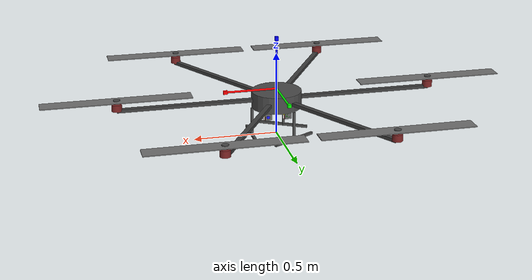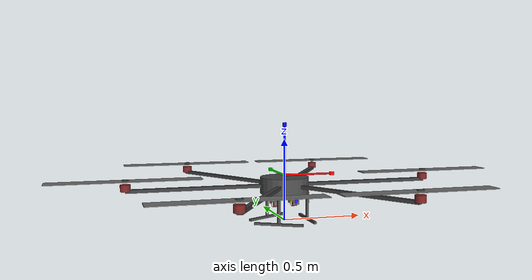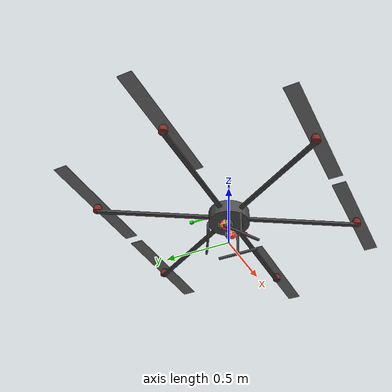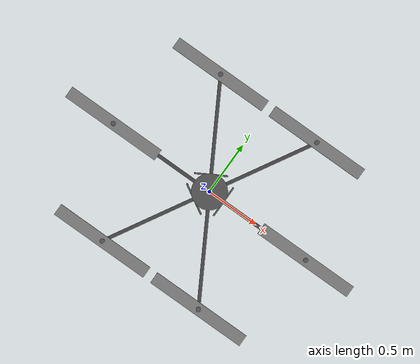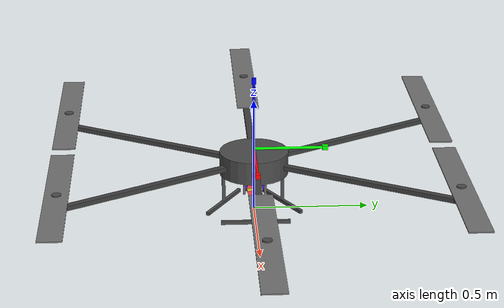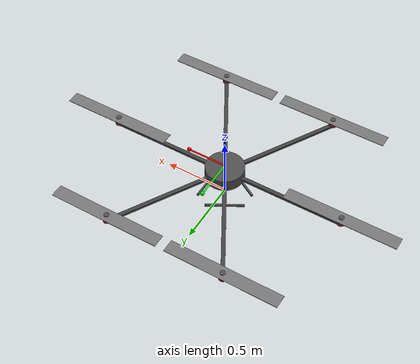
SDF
<?xml version="1.0" encoding="UTF-8"?>
<sdf version='1.9'>
  <model name='mars_hexacopter_cmg500_base'>
    <pose>0 0 0.22 0 0 0</pose>
    <self_collide>false</self_collide>
    <static>false</static>

    <!-- base_link: hub + arms + motors + landing gear -->
    <!-- Mass: 5.0 - 6×0.055(rotor) - 2×0.44(CMG) = 3.790 -->
    <link name="base_link">
      <inertial>
        <mass>3.790</mass>
        <inertia>
          <ixx>0.34310</ixx>
          <ixy>0</ixy>
          <ixz>0</ixz>
          <iyy>0.34310</iyy>
          <iyz>0</iyz>
          <izz>0.68200</izz>
        </inertia>
      </inertial>
      <gravity>true</gravity>
      <velocity_decay/>

      <!-- Central hub (cylinder r=0.15, h=0.10) -->
      <visual name="hub_visual">
        <pose>0 0 0 0 0 0</pose>
        <geometry>
          <cylinder>
            <radius>0.15</radius>
            <length>0.10</length>
          </cylinder>
        </geometry>
        <material>
          <ambient>0.2 0.2 0.2 1</ambient>
          <diffuse>0.3 0.3 0.3 1</diffuse>
        </material>
      </visual>

      <!-- Arm 0: 0° -->
      <visual name="arm_0_visual">
        <pose>0.55 0 0 0 0 0</pose>
        <geometry>
          <box><size>0.80 0.03 0.02</size></box>
        </geometry>
        <material>
          <ambient>0.15 0.15 0.15 1</ambient>
          <diffuse>0.25 0.25 0.25 1</diffuse>
        </material>
      </visual>

      <!-- Arm 1: 60° -->
      <visual name="arm_1_visual">
        <pose>0.275 0.47631 0 0 0 1.0472</pose>
        <geometry>
          <box><size>0.80 0.03 0.02</size></box>
        </geometry>
        <material>
          <ambient>0.15 0.15 0.15 1</ambient>
          <diffuse>0.25 0.25 0.25 1</diffuse>
        </material>
      </visual>

      <!-- Arm 2: 120° -->
      <visual name="arm_2_visual">
        <pose>-0.275 0.47631 0 0 0 2.0944</pose>
        <geometry>
          <box><size>0.80 0.03 0.02</size></box>
        </geometry>
        <material>
          <ambient>0.15 0.15 0.15 1</ambient>
          <diffuse>0.25 0.25 0.25 1</diffuse>
        </material>
      </visual>

      <!-- Arm 3: 180° -->
      <visual name="arm_3_visual">
        <pose>-0.55 0 0 0 0 3.1416</pose>
        <geometry>
          <box><size>0.80 0.03 0.02</size></box>
        </geometry>
        <material>
          <ambient>0.15 0.15 0.15 1</ambient>
          <diffuse>0.25 0.25 0.25 1</diffuse>
        </material>
      </visual>

      <!-- Arm 4: 240° -->
      <visual name="arm_4_visual">
        <pose>-0.275 -0.47631 0 0 0 4.1888</pose>
        <geometry>
          <box><size>0.80 0.03 0.02</size></box>
        </geometry>
        <material>
          <ambient>0.15 0.15 0.15 1</ambient>
          <diffuse>0.25 0.25 0.25 1</diffuse>
        </material>
      </visual>

      <!-- Arm 5: 300° -->
      <visual name="arm_5_visual">
        <pose>0.275 -0.47631 0 0 0 5.2360</pose>
        <geometry>
          <box><size>0.80 0.03 0.02</size></box>
        </geometry>
        <material>
          <ambient>0.15 0.15 0.15 1</ambient>
          <diffuse>0.25 0.25 0.25 1</diffuse>
        </material>
      </visual>

      <!-- Motor pods (small cylinders at arm tips) -->
      <visual name="motor_pod_0">
        <pose>0.95 0 0.02 0 0 0</pose>
        <geometry><cylinder><radius>0.03</radius><length>0.04</length></cylinder></geometry>
        <material><ambient>0.3 0.1 0.1 1</ambient><diffuse>0.5 0.15 0.15 1</diffuse></material>
      </visual>
      <visual name="motor_pod_1">
        <pose>0.475 0.82272 0.02 0 0 0</pose>
        <geometry><cylinder><radius>0.03</radius><length>0.04</length></cylinder></geometry>
        <material><ambient>0.3 0.1 0.1 1</ambient><diffuse>0.5 0.15 0.15 1</diffuse></material>
      </visual>
      <visual name="motor_pod_2">
        <pose>-0.475 0.82272 0.02 0 0 0</pose>
        <geometry><cylinder><radius>0.03</radius><length>0.04</length></cylinder></geometry>
        <material><ambient>0.3 0.1 0.1 1</ambient><diffuse>0.5 0.15 0.15 1</diffuse></material>
      </visual>
      <visual name="motor_pod_3">
        <pose>-0.95 0 0.02 0 0 0</pose>
        <geometry><cylinder><radius>0.03</radius><length>0.04</length></cylinder></geometry>
        <material><ambient>0.3 0.1 0.1 1</ambient><diffuse>0.5 0.15 0.15 1</diffuse></material>
      </visual>
      <visual name="motor_pod_4">
        <pose>-0.475 -0.82272 0.02 0 0 0</pose>
        <geometry><cylinder><radius>0.03</radius><length>0.04</length></cylinder></geometry>
        <material><ambient>0.3 0.1 0.1 1</ambient><diffuse>0.5 0.15 0.15 1</diffuse></material>
      </visual>
      <visual name="motor_pod_5">
        <pose>0.475 -0.82272 0.02 0 0 0</pose>
        <geometry><cylinder><radius>0.03</radius><length>0.04</length></cylinder></geometry>
        <material><ambient>0.3 0.1 0.1 1</ambient><diffuse>0.5 0.15 0.15 1</diffuse></material>
      </visual>

      <!-- Landing gear: 3 legs at 0°, 120°, 240° -->
      <visual name="leg_0_visual">
        <pose>0.15 0 -0.135 0 0 0</pose>
        <geometry><box><size>0.015 0.015 0.17</size></box></geometry>
        <material><ambient>0.2 0.2 0.2 1</ambient><diffuse>0.3 0.3 0.3 1</diffuse></material>
      </visual>
      <visual name="leg_1_visual">
        <pose>-0.075 0.130 -0.135 0 0 0</pose>
        <geometry><box><size>0.015 0.015 0.17</size></box></geometry>
        <material><ambient>0.2 0.2 0.2 1</ambient><diffuse>0.3 0.3 0.3 1</diffuse></material>
      </visual>
      <visual name="leg_2_visual">
        <pose>-0.075 -0.130 -0.135 0 0 0</pose>
        <geometry><box><size>0.015 0.015 0.17</size></box></geometry>
        <material><ambient>0.2 0.2 0.2 1</ambient><diffuse>0.3 0.3 0.3 1</diffuse></material>
      </visual>
      <visual name="foot_0">
        <pose>0.15 0 -0.22 0 0 1.5708</pose>
        <geometry><box><size>0.30 0.015 0.015</size></box></geometry>
        <material><ambient>0.2 0.2 0.2 1</ambient><diffuse>0.3 0.3 0.3 1</diffuse></material>
      </visual>
      <visual name="foot_1">
        <pose>-0.075 0.130 -0.22 0 0 0.5236</pose>
        <geometry><box><size>0.30 0.015 0.015</size></box></geometry>
        <material><ambient>0.2 0.2 0.2 1</ambient><diffuse>0.3 0.3 0.3 1</diffuse></material>
      </visual>
      <visual name="foot_2">
        <pose>-0.075 -0.130 -0.22 0 0 -0.5236</pose>
        <geometry><box><size>0.30 0.015 0.015</size></box></geometry>
        <material><ambient>0.2 0.2 0.2 1</ambient><diffuse>0.3 0.3 0.3 1</diffuse></material>
      </visual>

      <!-- Collision: central hub -->
      <collision name="hub_collision">
        <pose>0 0 0 0 0 0</pose>
        <geometry>
          <cylinder>
            <radius>0.15</radius>
            <length>0.10</length>
          </cylinder>
        </geometry>
        <surface>
          <contact><ode><min_depth>0.001</min_depth><max_vel>0</max_vel></ode></contact>
          <friction><ode/></friction>
        </surface>
      </collision>
      <!-- Collision: landing gear feet -->
      <collision name="foot_0_collision">
        <pose>0.15 0 -0.20 0 0 1.5708</pose>
        <geometry><box><size>0.30 0.04 0.06</size></box></geometry>
        <surface>
          <contact><ode><min_depth>0.002</min_depth><max_vel>0</max_vel></ode></contact>
          <friction><ode><mu>1.0</mu><mu2>1.0</mu2></ode></friction>
        </surface>
      </collision>
      <collision name="foot_1_collision">
        <pose>-0.075 0.130 -0.20 0 0 0.5236</pose>
        <geometry><box><size>0.30 0.04 0.06</size></box></geometry>
        <surface>
          <contact><ode><min_depth>0.002</min_depth><max_vel>0</max_vel></ode></contact>
          <friction><ode><mu>1.0</mu><mu2>1.0</mu2></ode></friction>
        </surface>
      </collision>
      <collision name="foot_2_collision">
        <pose>-0.075 -0.130 -0.20 0 0 -0.5236</pose>
        <geometry><box><size>0.30 0.04 0.06</size></box></geometry>
        <surface>
          <contact><ode><min_depth>0.002</min_depth><max_vel>0</max_vel></ode></contact>
          <friction><ode><mu>1.0</mu><mu2>1.0</mu2></ode></friction>
        </surface>
      </collision>

      <!-- Sensors -->
      <sensor name="imu_sensor" type="imu">
        <gz_frame_id>base_link</gz_frame_id>
        <always_on>1</always_on>
        <update_rate>250</update_rate>
        <imu>
          <angular_velocity>
            <x><noise type="gaussian"><mean>0.0</mean><stddev>0.0008726646</stddev></noise></x>
            <y><noise type="gaussian"><mean>0.0</mean><stddev>0.0008726646</stddev></noise></y>
            <z><noise type="gaussian"><mean>0.0</mean><stddev>0.0008726646</stddev></noise></z>
          </angular_velocity>
          <linear_acceleration>
            <x><noise type="gaussian"><mean>0.0</mean><stddev>0.00637</stddev></noise></x>
            <y><noise type="gaussian"><mean>0.0</mean><stddev>0.00637</stddev></noise></y>
            <z><noise type="gaussian"><mean>0.0</mean><stddev>0.00686</stddev></noise></z>
          </linear_acceleration>
        </imu>
      </sensor>
      <sensor name="air_pressure_sensor" type="air_pressure">
        <gz_frame_id>base_link</gz_frame_id>
        <always_on>1</always_on>
        <update_rate>50</update_rate>
        <air_pressure>
          <pressure><noise type="gaussian"><mean>0</mean><stddev>3</stddev></noise></pressure>
        </air_pressure>
      </sensor>
      <sensor name="navsat_sensor" type="navsat">
        <gz_frame_id>base_link</gz_frame_id>
        <always_on>1</always_on>
        <update_rate>30</update_rate>
      </sensor>

      <!-- ===== Body-frame coordinate axes (RGB = XYZ, no collision) ===== -->
      <!-- All axes at z=0.06 (above hub top surface) to avoid arm overlap -->
      <!-- X axis — Red shaft -->
      <visual name="axis_x_shaft">
        <pose>0.15 0 0.06 0 1.5708 0</pose>
        <geometry><cylinder><radius>0.006</radius><length>0.30</length></cylinder></geometry>
        <material><ambient>0.9 0.0 0.0 1</ambient><diffuse>1.0 0.0 0.0 1</diffuse></material>
      </visual>
      <!-- X axis — Red arrowhead -->
      <visual name="axis_x_tip">
        <pose>0.31 0 0.06 0 0 0</pose>
        <geometry><box><size>0.025 0.02 0.02</size></box></geometry>
        <material><ambient>0.9 0.0 0.0 1</ambient><diffuse>1.0 0.0 0.0 1</diffuse></material>
      </visual>

      <!-- Y axis — Green shaft -->
      <visual name="axis_y_shaft">
        <pose>0 0.15 0.06 1.5708 0 0</pose>
        <geometry><cylinder><radius>0.006</radius><length>0.30</length></cylinder></geometry>
        <material><ambient>0.0 0.9 0.0 1</ambient><diffuse>0.0 1.0 0.0 1</diffuse></material>
      </visual>
      <!-- Y axis — Green arrowhead -->
      <visual name="axis_y_tip">
        <pose>0 0.31 0.06 0 0 0</pose>
        <geometry><box><size>0.02 0.025 0.02</size></box></geometry>
        <material><ambient>0.0 0.9 0.0 1</ambient><diffuse>0.0 1.0 0.0 1</diffuse></material>
      </visual>

      <!-- Z axis — Blue shaft -->
      <visual name="axis_z_shaft">
        <pose>0 0 0.21 0 0 0</pose>
        <geometry><cylinder><radius>0.006</radius><length>0.30</length></cylinder></geometry>
        <material><ambient>0.0 0.0 0.9 1</ambient><diffuse>0.0 0.0 1.0 1</diffuse></material>
      </visual>
      <!-- Z axis — Blue arrowhead -->
      <visual name="axis_z_tip">
        <pose>0 0 0.37 0 0 0</pose>
        <geometry><box><size>0.02 0.02 0.025</size></box></geometry>
        <material><ambient>0.0 0.0 0.9 1</ambient><diffuse>0.0 0.0 1.0 1</diffuse></material>
      </visual>
    </link>

    <!-- Rotor 0: 0° (CCW) -->
    <link name="rotor_0">
      <gravity>true</gravity>
      <self_collide>false</self_collide>
      <velocity_decay/>
      <pose>0.95 0 0.06 0 0 0</pose>
      <inertial>
        <mass>0.055</mass>
        <inertia>
          <ixx>1.0e-05</ixx>
          <iyy>3.549333e-03</iyy>
          <izz>3.549333e-03</izz>
        </inertia>
      </inertial>
      <visual name="rotor_0_blade">
        <geometry>
          <box><size>0.88 0.10 0.005</size></box>
        </geometry>
        <material>
          <ambient>0.3 0.3 0.3 0.9</ambient>
          <diffuse>0.45 0.45 0.45 0.9</diffuse>
        </material>
      </visual>
      <visual name="rotor_0_hub">
        <geometry>
          <cylinder><radius>0.02</radius><length>0.015</length></cylinder>
        </geometry>
        <material>
          <ambient>0.2 0.2 0.2 1</ambient>
          <diffuse>0.3 0.3 0.3 1</diffuse>
        </material>
      </visual>
    </link>
    <joint name="rotor_0_joint" type="revolute">
      <parent>base_link</parent>
      <child>rotor_0</child>
      <axis>
        <xyz>0 0 1</xyz>
        <limit><lower>-1e+16</lower><upper>1e+16</upper></limit>
        <dynamics><spring_reference>0</spring_reference><spring_stiffness>0</spring_stiffness></dynamics>
      </axis>
    </joint>

    <!-- Rotor 1: 60° (CW) -->
    <link name="rotor_1">
      <gravity>true</gravity>
      <self_collide>false</self_collide>
      <velocity_decay/>
      <pose>0.475 0.82272 0.06 0 0 0</pose>
      <inertial>
        <mass>0.055</mass>
        <inertia>
          <ixx>1.0e-05</ixx>
          <iyy>3.549333e-03</iyy>
          <izz>3.549333e-03</izz>
        </inertia>
      </inertial>
      <visual name="rotor_1_blade">
        <geometry>
          <box><size>0.88 0.10 0.005</size></box>
        </geometry>
        <material>
          <ambient>0.3 0.3 0.3 0.9</ambient>
          <diffuse>0.45 0.45 0.45 0.9</diffuse>
        </material>
      </visual>
      <visual name="rotor_1_hub">
        <geometry>
          <cylinder><radius>0.02</radius><length>0.015</length></cylinder>
        </geometry>
        <material>
          <ambient>0.2 0.2 0.2 1</ambient>
          <diffuse>0.3 0.3 0.3 1</diffuse>
        </material>
      </visual>
    </link>
    <joint name="rotor_1_joint" type="revolute">
      <parent>base_link</parent>
      <child>rotor_1</child>
      <axis>
        <xyz>0 0 1</xyz>
        <limit><lower>-1e+16</lower><upper>1e+16</upper></limit>
        <dynamics><spring_reference>0</spring_reference><spring_stiffness>0</spring_stiffness></dynamics>
      </axis>
    </joint>

    <!-- Rotor 2: 120° (CCW) -->
    <link name="rotor_2">
      <gravity>true</gravity>
      <self_collide>false</self_collide>
      <velocity_decay/>
      <pose>-0.475 0.82272 0.06 0 0 0</pose>
      <inertial>
        <mass>0.055</mass>
        <inertia>
          <ixx>1.0e-05</ixx>
          <iyy>3.549333e-03</iyy>
          <izz>3.549333e-03</izz>
        </inertia>
      </inertial>
      <visual name="rotor_2_blade">
        <geometry>
          <box><size>0.88 0.10 0.005</size></box>
        </geometry>
        <material>
          <ambient>0.3 0.3 0.3 0.9</ambient>
          <diffuse>0.45 0.45 0.45 0.9</diffuse>
        </material>
      </visual>
      <visual name="rotor_2_hub">
        <geometry>
          <cylinder><radius>0.02</radius><length>0.015</length></cylinder>
        </geometry>
        <material>
          <ambient>0.2 0.2 0.2 1</ambient>
          <diffuse>0.3 0.3 0.3 1</diffuse>
        </material>
      </visual>
    </link>
    <joint name="rotor_2_joint" type="revolute">
      <parent>base_link</parent>
      <child>rotor_2</child>
      <axis>
        <xyz>0 0 1</xyz>
        <limit><lower>-1e+16</lower><upper>1e+16</upper></limit>
        <dynamics><spring_reference>0</spring_reference><spring_stiffness>0</spring_stiffness></dynamics>
      </axis>
    </joint>

    <!-- Rotor 3: 180° (CW) -->
    <link name="rotor_3">
      <gravity>true</gravity>
      <self_collide>false</self_collide>
      <velocity_decay/>
      <pose>-0.95 0 0.06 0 0 0</pose>
      <inertial>
        <mass>0.055</mass>
        <inertia>
          <ixx>1.0e-05</ixx>
          <iyy>3.549333e-03</iyy>
          <izz>3.549333e-03</izz>
        </inertia>
      </inertial>
      <visual name="rotor_3_blade">
        <geometry>
          <box><size>0.88 0.10 0.005</size></box>
        </geometry>
        <material>
          <ambient>0.3 0.3 0.3 0.9</ambient>
          <diffuse>0.45 0.45 0.45 0.9</diffuse>
        </material>
      </visual>
      <visual name="rotor_3_hub">
        <geometry>
          <cylinder><radius>0.02</radius><length>0.015</length></cylinder>
        </geometry>
        <material>
          <ambient>0.2 0.2 0.2 1</ambient>
          <diffuse>0.3 0.3 0.3 1</diffuse>
        </material>
      </visual>
    </link>
    <joint name="rotor_3_joint" type="revolute">
      <parent>base_link</parent>
      <child>rotor_3</child>
      <axis>
        <xyz>0 0 1</xyz>
        <limit><lower>-1e+16</lower><upper>1e+16</upper></limit>
        <dynamics><spring_reference>0</spring_reference><spring_stiffness>0</spring_stiffness></dynamics>
      </axis>
    </joint>

    <!-- Rotor 4: 240° (CCW) -->
    <link name="rotor_4">
      <gravity>true</gravity>
      <self_collide>false</self_collide>
      <velocity_decay/>
      <pose>-0.475 -0.82272 0.06 0 0 0</pose>
      <inertial>
        <mass>0.055</mass>
        <inertia>
          <ixx>1.0e-05</ixx>
          <iyy>3.549333e-03</iyy>
          <izz>3.549333e-03</izz>
        </inertia>
      </inertial>
      <visual name="rotor_4_blade">
        <geometry>
          <box><size>0.88 0.10 0.005</size></box>
        </geometry>
        <material>
          <ambient>0.3 0.3 0.3 0.9</ambient>
          <diffuse>0.45 0.45 0.45 0.9</diffuse>
        </material>
      </visual>
      <visual name="rotor_4_hub">
        <geometry>
          <cylinder><radius>0.02</radius><length>0.015</length></cylinder>
        </geometry>
        <material>
          <ambient>0.2 0.2 0.2 1</ambient>
          <diffuse>0.3 0.3 0.3 1</diffuse>
        </material>
      </visual>
    </link>
    <joint name="rotor_4_joint" type="revolute">
      <parent>base_link</parent>
      <child>rotor_4</child>
      <axis>
        <xyz>0 0 1</xyz>
        <limit><lower>-1e+16</lower><upper>1e+16</upper></limit>
        <dynamics><spring_reference>0</spring_reference><spring_stiffness>0</spring_stiffness></dynamics>
      </axis>
    </joint>

    <!-- Rotor 5: 300° (CW) -->
    <link name="rotor_5">
      <gravity>true</gravity>
      <self_collide>false</self_collide>
      <velocity_decay/>
      <pose>0.475 -0.82272 0.06 0 0 0</pose>
      <inertial>
        <mass>0.055</mass>
        <inertia>
          <ixx>1.0e-05</ixx>
          <iyy>3.549333e-03</iyy>
          <izz>3.549333e-03</izz>
        </inertia>
      </inertial>
      <visual name="rotor_5_blade">
        <geometry>
          <box><size>0.88 0.10 0.005</size></box>
        </geometry>
        <material>
          <ambient>0.3 0.3 0.3 0.9</ambient>
          <diffuse>0.45 0.45 0.45 0.9</diffuse>
        </material>
      </visual>
      <visual name="rotor_5_hub">
        <geometry>
          <cylinder><radius>0.02</radius><length>0.015</length></cylinder>
        </geometry>
        <material>
          <ambient>0.2 0.2 0.2 1</ambient>
          <diffuse>0.3 0.3 0.3 1</diffuse>
        </material>
      </visual>
    </link>
    <joint name="rotor_5_joint" type="revolute">
      <parent>base_link</parent>
      <child>rotor_5</child>
      <axis>
        <xyz>0 0 1</xyz>
        <limit><lower>-1e+16</lower><upper>1e+16</upper></limit>
        <dynamics><spring_reference>0</spring_reference><spring_stiffness>0</spring_stiffness></dynamics>
      </axis>
    </joint>

    <!-- CMG 1: +X side — Mini CMG 500 -->
    <!-- Gimbal axis: Y, Spin axis: X -->
    <link name="cmg1_gimbal">
      <pose relative_to="base_link">0.06 0 -0.10 0 0 0</pose>
      <inertial>
        <mass>0.16</mass>
        <inertia>
          <ixx>5.0e-5</ixx> <iyy>5.0e-5</iyy> <izz>5.0e-5</izz>
          <ixy>0</ixy> <ixz>0</ixz> <iyz>0</iyz>
        </inertia>
      </inertial>
      <!-- Gimbal shaft (Y-axis, visible frame) -->
      <visual name="cmg1_gimbal_shaft">
        <pose>0 0 0 1.5708 0 0</pose>
        <geometry><cylinder><radius>0.012</radius><length>0.10</length></cylinder></geometry>
        <material>
          <ambient>0.0 0.0 0.8 1</ambient>
          <diffuse>0.1 0.1 1.0 1</diffuse>
        </material>
      </visual>
      <!-- Gimbal mounting brackets (±Y ends) -->
      <visual name="cmg1_bracket_top">
        <pose>0 0.045 0 0 0 0</pose>
        <geometry><box><size>0.04 0.01 0.04</size></box></geometry>
        <material><ambient>0.3 0.3 0.3 1</ambient><diffuse>0.4 0.4 0.4 1</diffuse></material>
      </visual>
      <visual name="cmg1_bracket_bot">
        <pose>0 -0.045 0 0 0 0</pose>
        <geometry><box><size>0.04 0.01 0.04</size></box></geometry>
        <material><ambient>0.3 0.3 0.3 1</ambient><diffuse>0.4 0.4 0.4 1</diffuse></material>
      </visual>
    </link>

    <link name="cmg1_wheel">
      <pose relative_to="cmg1_gimbal">0 0 0 0 0 0</pose>
      <inertial>
        <mass>0.28</mass>
        <inertia>
          <ixx>1.603e-4</ixx> <iyy>9.0e-5</iyy> <izz>9.0e-5</izz>
          <ixy>0</ixy> <ixz>0</ixz> <iyz>0</iyz>
        </inertia>
      </inertial>
      <!-- Flywheel disk (R=35mm, L=30mm) -->
      <visual name="cmg1_wheel_visual">
        <pose>0 0 0 0 1.5708 0</pose>
        <geometry><cylinder><radius>0.035</radius><length>0.03</length></cylinder></geometry>
        <material>
          <ambient>0.9 0.2 0.2 1</ambient>
          <diffuse>1.0 0.3 0.3 1</diffuse>
        </material>
      </visual>
      <!-- Cross stripes for rotation visualization (protrude beyond wheel disk) -->
      <visual name="cmg1_stripe_y">
        <geometry><box><size>0.04 0.065 0.008</size></box></geometry>
        <material><ambient>1.0 1.0 0.0 1</ambient><diffuse>1.0 1.0 0.1 1</diffuse></material>
      </visual>
      <visual name="cmg1_stripe_z">
        <geometry><box><size>0.04 0.008 0.065</size></box></geometry>
        <material><ambient>1.0 1.0 1.0 1</ambient><diffuse>1.0 1.0 1.0 1</diffuse></material>
      </visual>
    </link>

    <!-- CMG 2: -X side — Mini CMG 500 -->
    <link name="cmg2_gimbal">
      <pose relative_to="base_link">-0.06 0 -0.10 0 0 0</pose>
      <inertial>
        <mass>0.16</mass>
        <inertia>
          <ixx>5.0e-5</ixx> <iyy>5.0e-5</iyy> <izz>5.0e-5</izz>
          <ixy>0</ixy> <ixz>0</ixz> <iyz>0</iyz>
        </inertia>
      </inertial>
      <!-- Gimbal shaft (Y-axis, visible frame) -->
      <visual name="cmg2_gimbal_shaft">
        <pose>0 0 0 1.5708 0 0</pose>
        <geometry><cylinder><radius>0.012</radius><length>0.10</length></cylinder></geometry>
        <material>
          <ambient>0.0 0.6 0.0 1</ambient>
          <diffuse>0.1 0.8 0.1 1</diffuse>
        </material>
      </visual>
      <!-- Gimbal mounting brackets (±Y ends) -->
      <visual name="cmg2_bracket_top">
        <pose>0 0.045 0 0 0 0</pose>
        <geometry><box><size>0.04 0.01 0.04</size></box></geometry>
        <material><ambient>0.3 0.3 0.3 1</ambient><diffuse>0.4 0.4 0.4 1</diffuse></material>
      </visual>
      <visual name="cmg2_bracket_bot">
        <pose>0 -0.045 0 0 0 0</pose>
        <geometry><box><size>0.04 0.01 0.04</size></box></geometry>
        <material><ambient>0.3 0.3 0.3 1</ambient><diffuse>0.4 0.4 0.4 1</diffuse></material>
      </visual>
    </link>

    <link name="cmg2_wheel">
      <pose relative_to="cmg2_gimbal">0 0 0 0 0 0</pose>
      <inertial>
        <mass>0.28</mass>
        <inertia>
          <ixx>1.603e-4</ixx> <iyy>9.0e-5</iyy> <izz>9.0e-5</izz>
          <ixy>0</ixy> <ixz>0</ixz> <iyz>0</iyz>
        </inertia>
      </inertial>
      <!-- Flywheel disk -->
      <visual name="cmg2_wheel_visual">
        <pose>0 0 0 0 1.5708 0</pose>
        <geometry><cylinder><radius>0.035</radius><length>0.03</length></cylinder></geometry>
        <material>
          <ambient>0.9 0.2 0.2 1</ambient>
          <diffuse>1.0 0.3 0.3 1</diffuse>
        </material>
      </visual>
      <!-- Cross stripes for rotation visualization (protrude beyond wheel disk) -->
      <visual name="cmg2_stripe_y">
        <geometry><box><size>0.04 0.065 0.008</size></box></geometry>
        <material><ambient>1.0 1.0 0.0 1</ambient><diffuse>1.0 1.0 0.1 1</diffuse></material>
      </visual>
      <visual name="cmg2_stripe_z">
        <geometry><box><size>0.04 0.008 0.065</size></box></geometry>
        <material><ambient>1.0 1.0 1.0 1</ambient><diffuse>1.0 1.0 1.0 1</diffuse></material>
      </visual>
    </link>

    <!-- CMG Joints — Mini CMG 500 limits -->
    <joint name="cmg1_gimbal_joint" type="revolute">
      <parent>base_link</parent>
      <child>cmg1_gimbal</child>
      <axis>
        <xyz>0 1 0</xyz>
        <limit>
          <lower>-1e16</lower> <upper>1e16</upper>
          <effort>10</effort> <velocity>2.0</velocity>
        </limit>
        <dynamics><damping>0.0</damping><friction>0.0</friction></dynamics>
      </axis>
    </joint>

    <joint name="cmg1_wheel_joint" type="revolute">
      <parent>cmg1_gimbal</parent>
      <child>cmg1_wheel</child>
      <axis>
        <xyz>1 0 0</xyz>
        <limit>
          <lower>-1e16</lower> <upper>1e16</upper>
          <effort>1</effort> <velocity>3200</velocity>
        </limit>
        <dynamics><damping>0.0</damping><friction>0.0</friction></dynamics>
      </axis>
    </joint>

    <joint name="cmg2_gimbal_joint" type="revolute">
      <parent>base_link</parent>
      <child>cmg2_gimbal</child>
      <axis>
        <xyz>0 1 0</xyz>
        <limit>
          <lower>-1e16</lower> <upper>1e16</upper>
          <effort>10</effort> <velocity>2.0</velocity>
        </limit>
        <dynamics><damping>0.0</damping><friction>0.0</friction></dynamics>
      </axis>
    </joint>

    <joint name="cmg2_wheel_joint" type="revolute">
      <parent>cmg2_gimbal</parent>
      <child>cmg2_wheel</child>
      <axis>
        <xyz>1 0 0</xyz>
        <limit>
          <lower>-1e16</lower> <upper>1e16</upper>
          <effort>1</effort> <velocity>3200</velocity>
        </limit>
        <dynamics><damping>0.0</damping><friction>0.0</friction></dynamics>
      </axis>
    </joint>

  </model>
</sdf>
